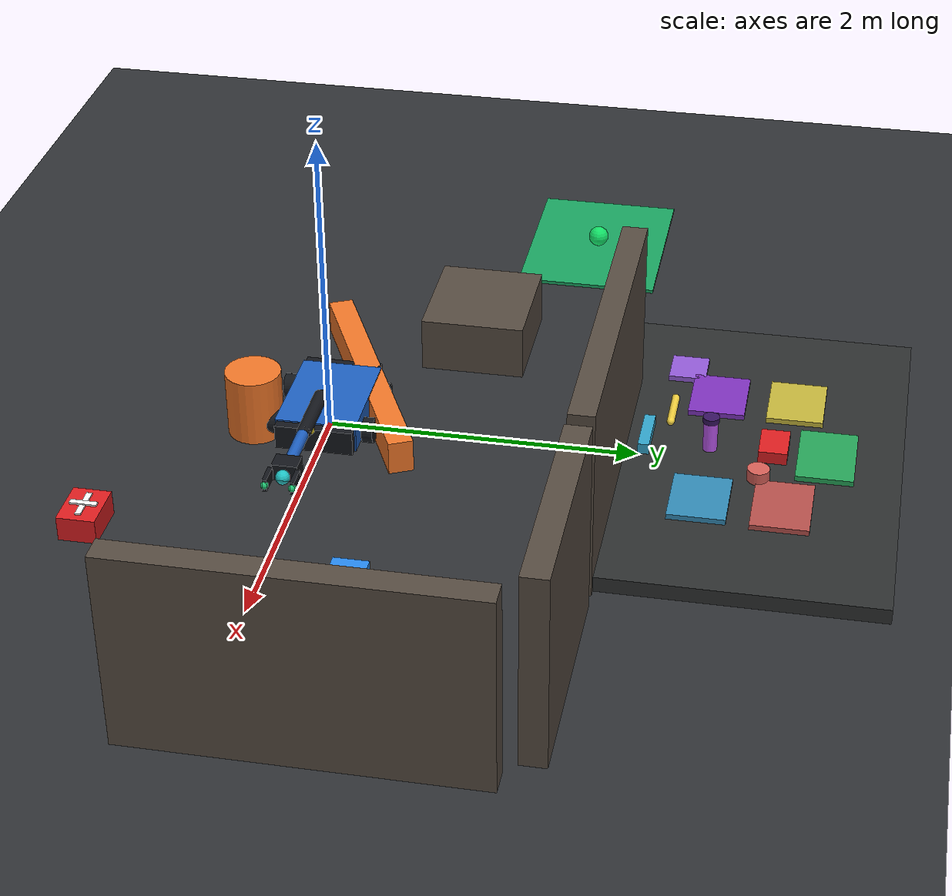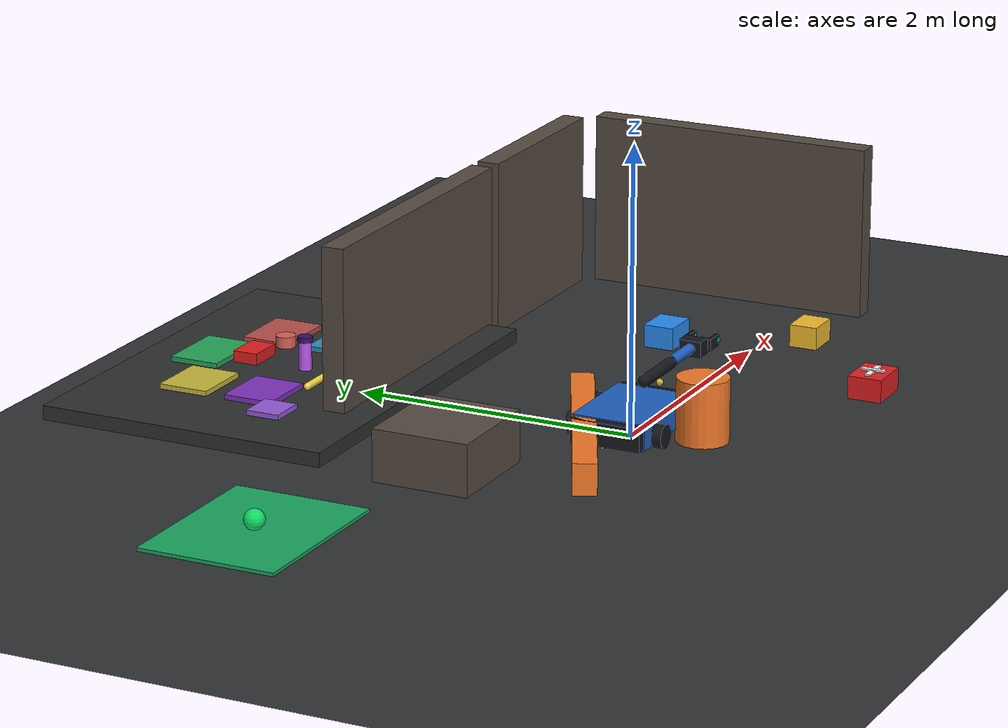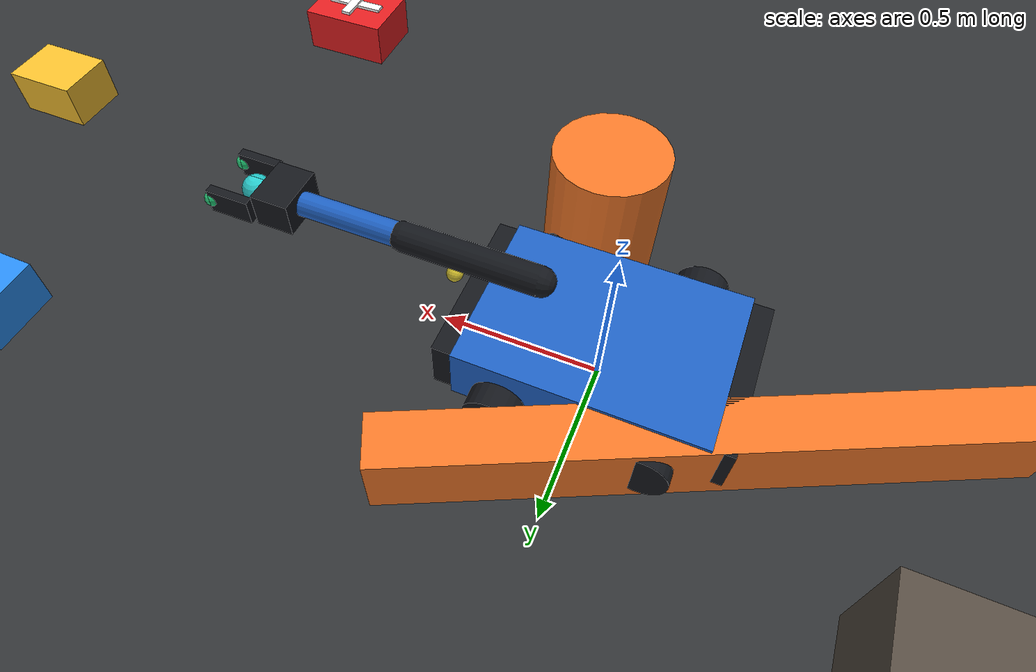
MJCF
<mujoco model="RescueRack">
  <compiler angle="radian" autolimits="true"/>
  <option timestep="0.002" gravity="0 0 -9.81" integrator="implicitfast"/>
  <visual>
    <global offwidth="1280" offheight="720"/>
  </visual>

  <default>
    <joint damping="8" armature="0.08"/>
    <geom friction="1.1 0.08 0.02" solref="0.02 1" solimp="0.9 0.95 0.001"/>
    <site size="0.035" rgba="0.2 0.8 1 0.7"/>
    <position kp="20" kv="6"/>
  </default>

  <asset>
    <texture name="grid" type="2d" builtin="checker" width="512" height="512"
             rgb1="0.16 0.17 0.18" rgb2="0.22 0.23 0.24"/>
    <material name="floor_mat" texture="grid" texrepeat="8 8" reflectance="0.12"/>
    <material name="robot_blue" rgba="0.12 0.38 0.76 1"/>
    <material name="robot_dark" rgba="0.08 0.09 0.11 1"/>
    <material name="safe_green" rgba="0.1 0.65 0.38 1"/>
    <material name="warning_orange" rgba="0.95 0.47 0.16 1"/>
    <material name="medkit_red" rgba="0.88 0.12 0.13 1"/>
    <material name="water_blue" rgba="0.16 0.55 0.95 1"/>
    <material name="battery_yellow" rgba="0.95 0.74 0.18 1"/>
    <material name="shelf_mat" rgba="0.34 0.30 0.26 1"/>
  </asset>

  <worldbody>
    <light name="key_light" pos="-2.5 -3 4.5" dir="0.45 0.55 -1"/>
    <light name="fill_light" pos="3 2.5 3" dir="-0.6 -0.45 -1" diffuse="0.35 0.35 0.35"/>
    <camera name="overview" pos="0 -6.4 4.6" xyaxes="1 0 0 0 0.62 0.78" fovy="44"/>
    <camera name="robot_chase" pos="-1.5 -2.8 1.5" xyaxes="1 0 0 0 0.45 0.89" fovy="55"/>
    <camera name="triage_cam" pos="0 0.55 3.05" xyaxes="1 0 0 0 0.78 0.63" fovy="46"/>

    <geom name="floor" type="plane" size="5 4 0.1" material="floor_mat"/>
    <geom name="safe_zone" type="box" pos="-2.65 1.35 0.012" size="0.62 0.48 0.012"
          material="safe_green" contype="0" conaffinity="0"/>
    <site name="safe_zone_site" pos="-2.65 1.35 0.08" size="0.07" rgba="0.1 1 0.45 0.75"/>

    <geom name="rack_back_left" type="box" pos="0.4 1.85 0.62" size="1.1 0.08 0.62"
          material="shelf_mat"/>
    <geom name="rack_back_right" type="box" pos="2.3 1.85 0.62" size="0.7 0.08 0.62"
          material="shelf_mat"/>
    <geom name="rack_side" type="box" pos="3.15 0.65 0.62" size="0.08 1.05 0.62"
          material="shelf_mat"/>

    <geom name="fallen_beam" type="box" pos="-0.35 0.18 0.11" euler="0 0 0.45"
          size="0.9 0.08 0.11" material="warning_orange"/>
    <geom name="pallet_block" type="box" pos="-1.15 0.78 0.18" size="0.38 0.34 0.18"
          material="shelf_mat"/>
    <geom name="loose_barrel" type="cylinder" pos="0.15 -0.45 0.22" size="0.18 0.22"
          material="warning_orange"/>

    <geom name="triage_table" type="box" pos="0 2.6 0.05" size="1.45 1.05 0.05"
          rgba="0.18 0.19 0.19 1"/>
    <geom name="vial_tray" type="box" pos="-0.58 2.45 0.115" size="0.22 0.18 0.02"
          rgba="0.5 0.2 0.75 1" contype="0" conaffinity="0"/>
    <geom name="vial_cap_tray" type="box" pos="-0.88 2.22 0.115" size="0.13 0.12 0.02"
          rgba="0.58 0.36 0.85 1" contype="0" conaffinity="0"/>
    <geom name="tool_tray" type="box" pos="0.58 2.45 0.115" size="0.22 0.18 0.02"
          rgba="0.2 0.55 0.72 1" contype="0" conaffinity="0"/>
    <geom name="pack_tray" type="box" pos="0 3.18 0.115" size="0.26 0.18 0.02"
          rgba="0.15 0.65 0.35 1" contype="0" conaffinity="0"/>
    <geom name="syringe_tray" type="box" pos="-0.58 2.95 0.115" size="0.22 0.18 0.02"
          rgba="0.78 0.72 0.24 1" contype="0" conaffinity="0"/>
    <geom name="bandage_tray" type="box" pos="0.58 2.95 0.115" size="0.24 0.18 0.02"
          rgba="0.72 0.32 0.3 1" contype="0" conaffinity="0"/>

    <body name="triage_hand" pos="0 0 0">
      <joint name="triage_palm_x" type="slide" axis="1 0 0" range="-0.95 0.95" damping="28"/>
      <joint name="triage_palm_y" type="slide" axis="0 1 0" range="1.85 3.32" damping="28"/>
      <joint name="triage_palm_z" type="slide" axis="0 0 1" range="0.36 0.78" damping="28"/>
      <geom name="triage_palm" type="box" pos="0 0 0" size="0.13 0.09 0.035"
            material="robot_blue" mass="1.6" contype="0" conaffinity="0"/>
      <site name="triage_palm_site" pos="0 0 0" size="0.04" rgba="0.2 1 1 0.8"/>

      <body name="thumb" pos="-0.08 -0.04 -0.02" euler="0 0 -0.85">
        <joint name="thumb_joint" type="hinge" axis="0 0 1" range="0 1.05" damping="2"/>
        <geom name="thumb_link" type="capsule" fromto="0 0 0 0.18 0 0" size="0.018"
              material="robot_dark" mass="0.18" contype="0" conaffinity="0"/>
        <site name="thumb_tip" pos="0.19 0 0" size="0.018" rgba="1 0.7 0.2 0.9"/>
      </body>

      <body name="index" pos="0.08 -0.035 -0.02" euler="0 0 -0.25">
        <joint name="index_joint" type="hinge" axis="0 0 1" range="0 1.05" damping="2"/>
        <geom name="index_link" type="capsule" fromto="0 0 0 0.2 0 0" size="0.016"
              material="robot_dark" mass="0.16" contype="0" conaffinity="0"/>
        <site name="index_tip" pos="0.21 0 0" size="0.018" rgba="1 0.7 0.2 0.9"/>
      </body>

      <body name="middle" pos="0.0 0.075 -0.02" euler="0 0 1.57">
        <joint name="middle_joint" type="hinge" axis="0 0 1" range="0 1.05" damping="2"/>
        <geom name="middle_link" type="capsule" fromto="0 0 0 0.2 0 0" size="0.016"
              material="robot_dark" mass="0.16" contype="0" conaffinity="0"/>
        <site name="middle_tip" pos="0.21 0 0" size="0.018" rgba="1 0.7 0.2 0.9"/>
      </body>

      <body name="ring" pos="-0.075 0.065 -0.02" euler="0 0 2.2">
        <joint name="ring_joint" type="hinge" axis="0 0 1" range="0 1.05" damping="2"/>
        <geom name="ring_link" type="capsule" fromto="0 0 0 0.18 0 0" size="0.015"
              material="robot_dark" mass="0.14" contype="0" conaffinity="0"/>
        <site name="ring_tip" pos="0.19 0 0" size="0.017" rgba="1 0.7 0.2 0.9"/>
      </body>

      <body name="little" pos="-0.11 0.015 -0.02" euler="0 0 2.75">
        <joint name="little_joint" type="hinge" axis="0 0 1" range="0 1.05" damping="2"/>
        <geom name="little_link" type="capsule" fromto="0 0 0 0.16 0 0" size="0.014"
              material="robot_dark" mass="0.12" contype="0" conaffinity="0"/>
        <site name="little_tip" pos="0.17 0 0" size="0.016" rgba="1 0.7 0.2 0.9"/>
      </body>
    </body>

    <body name="robot" pos="0 0 0.05">
      <joint name="base_x" type="slide" axis="1 0 0" range="-3.6 3.6" damping="55"/>
      <joint name="base_y" type="slide" axis="0 1 0" range="-2.8 2.8" damping="55"/>
      <joint name="base_yaw" type="hinge" axis="0 0 1" range="-3.1416 3.1416" damping="12"/>

      <geom name="base_body" type="box" pos="0 0 0.09" size="0.36 0.26 0.09"
            contype="1" conaffinity="1"
            material="robot_blue" mass="22"/>
      <geom name="front_bumper" type="box" pos="0.38 0 0.09" size="0.04 0.25 0.08"
            contype="1" conaffinity="1"
            material="robot_dark" mass="1"/>
      <geom name="rear_bumper" type="box" pos="-0.38 0 0.09" size="0.04 0.25 0.08"
            contype="1" conaffinity="1"
            material="robot_dark" mass="1"/>
      <geom name="left_wheel_front" type="cylinder" pos="0.21 0.31 0.07" euler="1.5708 0 0"
            contype="0" conaffinity="0"
            size="0.08 0.035" material="robot_dark" mass="1"/>
      <geom name="right_wheel_front" type="cylinder" pos="0.21 -0.31 0.07" euler="1.5708 0 0"
            contype="0" conaffinity="0"
            size="0.08 0.035" material="robot_dark" mass="1"/>
      <geom name="left_wheel_back" type="cylinder" pos="-0.21 0.31 0.07" euler="1.5708 0 0"
            contype="0" conaffinity="0"
            size="0.08 0.035" material="robot_dark" mass="1"/>
      <geom name="right_wheel_back" type="cylinder" pos="-0.21 -0.31 0.07" euler="1.5708 0 0"
            contype="0" conaffinity="0"
            size="0.08 0.035" material="robot_dark" mass="1"/>

      <site name="front_range_site" pos="0.46 0 0.19" zaxis="1 0 0" size="0.025"
            rgba="1 0.9 0.2 0.8"/>

      <body name="shoulder_link" pos="0.2 0 0.28">
        <joint name="shoulder" type="hinge" axis="0 1 0" range="-1.2 1.2" damping="5"/>
        <geom name="upper_arm" type="capsule" fromto="0 0 0 0.42 0 0" size="0.045"
              contype="0" conaffinity="0"
              material="robot_dark" mass="2.2"/>

        <body name="elbow_link" pos="0.42 0 0">
          <joint name="elbow" type="hinge" axis="0 1 0" range="-1.65 1.4" damping="4"/>
          <geom name="forearm" type="capsule" fromto="0 0 0 0.34 0 0" size="0.038"
                contype="0" conaffinity="0"
                material="robot_blue" mass="1.6"/>

          <body name="wrist_link" pos="0.34 0 0">
            <joint name="wrist" type="hinge" axis="0 1 0" range="-1.2 1.2" damping="3"/>
            <geom name="wrist_block" type="box" pos="0.05 0 0" size="0.06 0.08 0.055"
                  contype="0" conaffinity="0"
                  material="robot_dark" mass="0.7"/>
            <site name="gripper_site" pos="0.15 0 0" size="0.045" rgba="0.2 1 1 0.8"/>

            <body name="left_finger" pos="0.13 0.085 0">
              <joint name="left_finger_joint" type="slide" axis="0 -1 0" range="0 0.055" damping="1"/>
              <geom name="left_finger_pad" type="box" pos="0.055 0 0" size="0.07 0.014 0.04"
                    contype="0" conaffinity="0"
                    material="robot_dark" mass="0.25"/>
              <site name="left_pad_site" pos="0.12 0 0" size="0.025" rgba="0.2 1 0.6 0.8"/>
            </body>

            <body name="right_finger" pos="0.13 -0.085 0">
              <joint name="right_finger_joint" type="slide" axis="0 1 0" range="0 0.055" damping="1"/>
              <geom name="right_finger_pad" type="box" pos="0.055 0 0" size="0.07 0.014 0.04"
                    contype="0" conaffinity="0"
                    material="robot_dark" mass="0.25"/>
              <site name="right_pad_site" pos="0.12 0 0" size="0.025" rgba="0.2 1 0.6 0.8"/>
            </body>
          </body>
        </body>
      </body>
    </body>

    <body name="medkit" pos="1.42 -1.15 0.12">
      <freejoint name="medkit_free"/>
      <geom name="medkit_box" type="box" size="0.16 0.12 0.08" material="medkit_red" mass="1.2"/>
      <geom name="medkit_cross_x" type="box" pos="0 0 0.085" size="0.11 0.018 0.006"
            rgba="1 1 1 1" contype="0" conaffinity="0"/>
      <geom name="medkit_cross_y" type="box" pos="0 0 0.092" size="0.018 0.085 0.006"
            rgba="1 1 1 1" contype="0" conaffinity="0"/>
      <site name="medkit_site" pos="0 0 0" size="0.05" rgba="1 0.15 0.15 0.85"/>
    </body>

    <body name="water" pos="1.8 0.55 0.12">
      <freejoint name="water_free"/>
      <geom name="water_box" type="box" size="0.14 0.11 0.08" material="water_blue" mass="1.0"/>
      <site name="water_site" pos="0 0 0" size="0.045" rgba="0.2 0.7 1 0.8"/>
    </body>

    <body name="battery" pos="2.25 -0.35 0.12">
      <freejoint name="battery_free"/>
      <geom name="battery_box" type="box" size="0.13 0.1 0.08" material="battery_yellow" mass="1.4"/>
      <site name="battery_site" pos="0 0 0" size="0.045" rgba="1 0.8 0.1 0.8"/>
    </body>

    <body name="vial" pos="0 2.45 0.18">
      <freejoint name="vial_free"/>
      <geom name="vial_body" type="cylinder" size="0.045 0.12" rgba="0.75 0.35 0.95 1" mass="0.18"/>
      <site name="vial_site" pos="0 0 0" size="0.025" rgba="0.8 0.35 1 0.9"/>
    </body>

    <body name="vial_cap" pos="0 2.45 0.32">
      <freejoint name="vial_cap_free"/>
      <geom name="vial_cap_body" type="cylinder" size="0.052 0.018"
            rgba="0.22 0.08 0.38 1" mass="0.04"/>
      <site name="vial_cap_site" pos="0 0 0" size="0.018" rgba="0.9 0.55 1 0.9"/>
    </body>

    <body name="tool" pos="0 2.05 0.16">
      <freejoint name="tool_free"/>
      <geom name="tool_body" type="box" size="0.17 0.035 0.035" rgba="0.2 0.65 0.8 1" mass="0.22"/>
      <site name="tool_site" pos="0 0 0" size="0.025" rgba="0.2 0.8 1 0.9"/>
    </body>

    <body name="soft_pack" pos="0 2.85 0.16">
      <freejoint name="soft_pack_free"/>
      <geom name="soft_pack_body" type="box" size="0.13 0.09 0.04" material="medkit_red" mass="0.2"/>
      <site name="soft_pack_site" pos="0 0 0" size="0.025" rgba="1 0.25 0.25 0.9"/>
    </body>

    <body name="syringe" pos="-0.32 2.18 0.155">
      <freejoint name="syringe_free"/>
      <geom name="syringe_body" type="capsule" fromto="-0.14 0 0 0.14 0 0" size="0.025"
            rgba="0.95 0.82 0.25 1" mass="0.12"/>
      <site name="syringe_site" pos="0 0 0" size="0.023" rgba="1 0.85 0.2 0.9"/>
    </body>

    <body name="bandage" pos="0.32 2.78 0.165">
      <freejoint name="bandage_free"/>
      <geom name="bandage_body" type="cylinder" size="0.07 0.04" rgba="0.85 0.38 0.35 1" mass="0.16"/>
      <site name="bandage_site" pos="0 0 0" size="0.024" rgba="1 0.45 0.4 0.9"/>
    </body>
  </worldbody>

  <actuator>
    <position name="base_x_position" joint="base_x" kp="90" kv="28" ctrlrange="-3.6 3.6"/>
    <position name="base_y_position" joint="base_y" kp="90" kv="28" ctrlrange="-2.8 2.8"/>
    <position name="base_yaw_position" joint="base_yaw" kp="45" kv="14" ctrlrange="-3.1416 3.1416"/>
    <position name="shoulder_position" joint="shoulder" kp="20" kv="8" ctrlrange="-1.2 1.2"/>
    <position name="elbow_position" joint="elbow" kp="18" kv="8" ctrlrange="-1.65 1.4"/>
    <position name="wrist_position" joint="wrist" kp="16" kv="7" ctrlrange="-1.2 1.2"/>
    <position name="left_gripper_position" joint="left_finger_joint" kp="18" kv="5" ctrlrange="0 0.055"/>
    <position name="right_gripper_position" joint="right_finger_joint" kp="18" kv="5" ctrlrange="0 0.055"/>
    <position name="triage_palm_x_position" joint="triage_palm_x" kp="95" kv="22" ctrlrange="-0.95 0.95"/>
    <position name="triage_palm_y_position" joint="triage_palm_y" kp="95" kv="22" ctrlrange="1.85 3.32"/>
    <position name="triage_palm_z_position" joint="triage_palm_z" kp="260" kv="40" ctrlrange="0.36 0.78"/>
    <position name="thumb_position" joint="thumb_joint" kp="28" kv="7" ctrlrange="0 1.05"/>
    <position name="index_position" joint="index_joint" kp="28" kv="7" ctrlrange="0 1.05"/>
    <position name="middle_position" joint="middle_joint" kp="28" kv="7" ctrlrange="0 1.05"/>
    <position name="ring_position" joint="ring_joint" kp="26" kv="7" ctrlrange="0 1.05"/>
    <position name="little_position" joint="little_joint" kp="24" kv="7" ctrlrange="0 1.05"/>
  </actuator>

  <sensor>
    <jointpos name="base_x_sensor" joint="base_x"/>
    <jointpos name="base_y_sensor" joint="base_y"/>
    <jointpos name="base_yaw_sensor" joint="base_yaw"/>
    <framepos name="gripper_position" objtype="site" objname="gripper_site"/>
    <framepos name="medkit_position" objtype="site" objname="medkit_site"/>
    <framepos name="safe_zone_position" objtype="site" objname="safe_zone_site"/>
    <rangefinder name="front_range" site="front_range_site"/>
    <framepos name="triage_palm_position" objtype="site" objname="triage_palm_site"/>
    <jointpos name="thumb_joint_sensor" joint="thumb_joint"/>
    <jointpos name="index_joint_sensor" joint="index_joint"/>
    <jointpos name="middle_joint_sensor" joint="middle_joint"/>
    <jointpos name="ring_joint_sensor" joint="ring_joint"/>
    <jointpos name="little_joint_sensor" joint="little_joint"/>
    <framepos name="thumb_tip_position" objtype="site" objname="thumb_tip"/>
    <framepos name="index_tip_position" objtype="site" objname="index_tip"/>
    <framepos name="middle_tip_position" objtype="site" objname="middle_tip"/>
    <framepos name="ring_tip_position" objtype="site" objname="ring_tip"/>
    <framepos name="little_tip_position" objtype="site" objname="little_tip"/>
    <framepos name="vial_position" objtype="site" objname="vial_site"/>
    <framepos name="vial_cap_position" objtype="site" objname="vial_cap_site"/>
    <framepos name="tool_position" objtype="site" objname="tool_site"/>
    <framepos name="soft_pack_position" objtype="site" objname="soft_pack_site"/>
    <framepos name="syringe_position" objtype="site" objname="syringe_site"/>
    <framepos name="bandage_position" objtype="site" objname="bandage_site"/>
  </sensor>
</mujoco>
